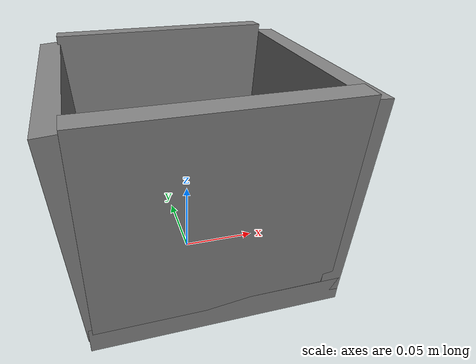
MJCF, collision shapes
<mujoco model="basket">
  <compiler angle="radian" meshdir="." texturedir="."/>
  <asset>
    <texture file="basket_texture.png" name="basket_tex-basket" type="2d" />
    <material name="basket_basket" reflectance="0.5" texrepeat="1 1" texture="basket_tex-basket" texuniform="false" />
    <mesh file="basket_basket_vis.msh" name="basket_basket_vis" scale="1.0 1.0 1.0" />
  </asset>
  <worldbody>
    <body name="basket" pos="0 0 0">
      <inertial pos="0.00123187 -0.000131397 0.05665" quat="0.00537632 0.714473 -0.0066473 0.69961" mass="0.4" diaginertia="0.00240062 0.00201104 0.00187765"/>
      <site name="basket_center" pos="0 0 0" size="0.005" rgba="0 0 0 0"/>
      <site name="basket_opening" pos="0 0 0.1415" size="0.0647" rgba="0 0 0 0"/>
      <site name="basket_floor" pos="0 0 0.0174" size="0.005" rgba="0 0 0 0"/>
      <geom name="basket_vis0" type="mesh" mesh="basket_basket_vis" pos="-3.99961e-05 -0.000229003 -0.00421296" material="basket_basket" group="2" contype="0" conaffinity="0"/>
      <geom name="basket_col1" type="box" size="0.00850 0.07240 0.07658" pos="0.00247 -0.000229003 0.00886704" quat="0.70880 -0.00000 0.70541 -0.00000" rgba="0.5 0.5 0.5 0.3" group="3" condim="6" friction="1 0.02 0.004"/>
      <geom name="basket_col2" type="box" size="0.00667 0.06368 0.07240" pos="-0.07269 -0.000229003 0.072357" quat="0.02672 -0.02672 0.70660 0.70660" rgba="0.5 0.5 0.5 0.3" group="3" condim="6" friction="1 0.02 0.004"/>
      <geom name="basket_col3" type="box" size="0.00667 0.06368 0.07240" pos="0.000430004 -0.068779 0.077557" quat="0.51263 -0.49025 0.50956 -0.48704" rgba="0.5 0.5 0.5 0.3" group="3" condim="6" friction="1 0.02 0.004"/>
      <geom name="basket_col4" type="box" size="0.00667 0.06368 0.07240" pos="-0.000239996 0.068861 0.077557" quat="0.48794 -0.51043 -0.48935 0.51177" rgba="0.5 0.5 0.5 0.3" group="3" condim="6" friction="1 0.02 0.004"/>
      <geom name="basket_col5" type="box" size="0.00667 0.06368 0.07240" pos="0.07553 -0.000229003 0.072357" quat="0.01765 0.01765 -0.70689 0.70689" rgba="0.5 0.5 0.5 0.3" group="3" condim="6" friction="1 0.02 0.004"/>
    </body>
  </worldbody>
</mujoco>
